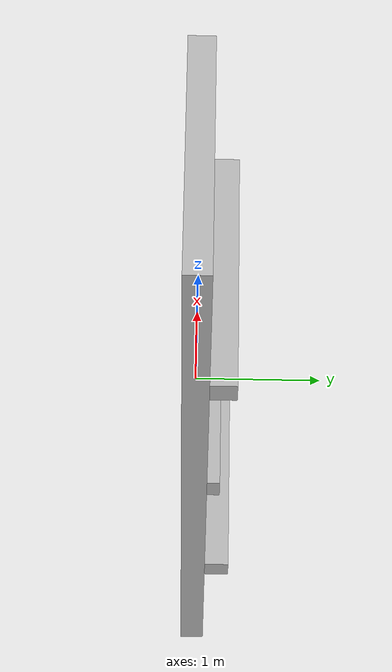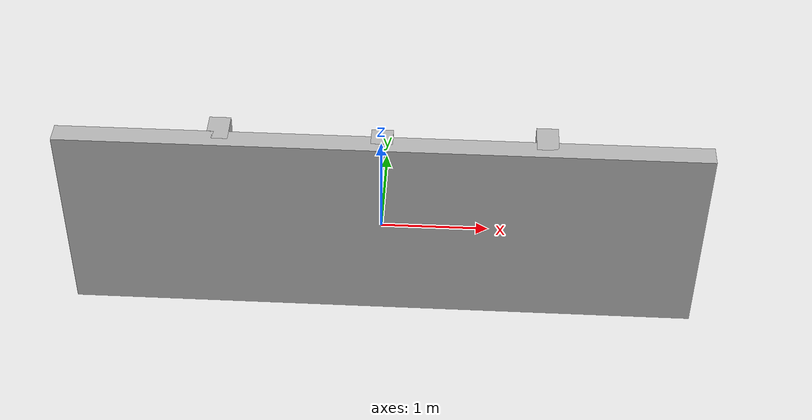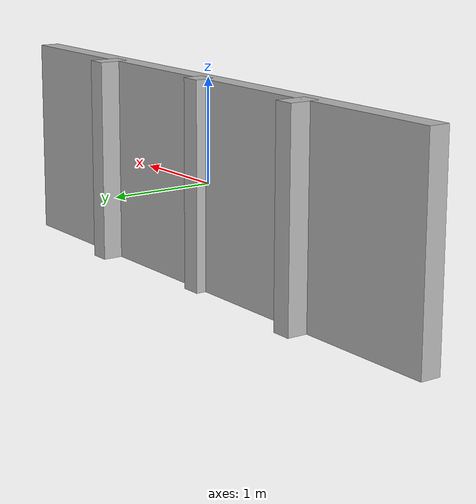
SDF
<?xml version='1.0'?>
<!-- from http://gazebosim.org/tutorials?tut=build_robot -->
<sdf version='1.4'>
    <model name="wall">
        <static>true</static>
        <link name='wall'>
            <inertial>
                <mass>1</mass>
            </inertial>

            <collision name='cwall'>
                <geometry>
                    <box>
                        <size>6 0.2 2</size>
                    </box>
                </geometry>
            </collision>
            <visual name='vwall'>
                <geometry>
                    <box>
                        <size>6 0.2 2</size>
                    </box>
                </geometry>
            </visual>

            <collision name='cbump1'>
                <geometry>
                    <box>
                        <size>0.2 0.2 2</size>
                    </box>
                </geometry>
                <pose>0 0.1 0 0 0 0</pose>
            </collision>
            <visual name='vbump1'>
                <geometry>
                    <box>
                        <size>0.2 0.2 2</size>
                    </box>
                </geometry>
                <pose>0 0.1 0 0 0 0</pose>
            </visual>

            <collision name='cbump2'>
                <geometry>
                    <box>
                        <size>0.2 0.3 2</size>
                    </box>
                </geometry>
                <pose>1.5 0.15 0 0 0 0</pose>
            </collision>
            <visual name='vbump2'>
                <geometry>
                    <box>
                        <size>0.2 0.3 2</size>
                    </box>
                </geometry>
                <pose>1.5 0.15 0 0 0 0</pose>
            </visual>

            <collision name='cbump3'>
                <geometry>
                    <box>
                        <size>0.2 0.3 2</size>
                    </box>
                </geometry>
                <pose>-1.5 0.15 0 0 0 0</pose>
            </collision>
            <visual name='vbump3'>
                <geometry>
                    <box>
                        <size>0.2 0.3 2</size>
                    </box>
                </geometry>
                <pose>-1.5 0.15 0 0 0 0</pose>
            </visual>
        </link>
    </model>
</sdf>
